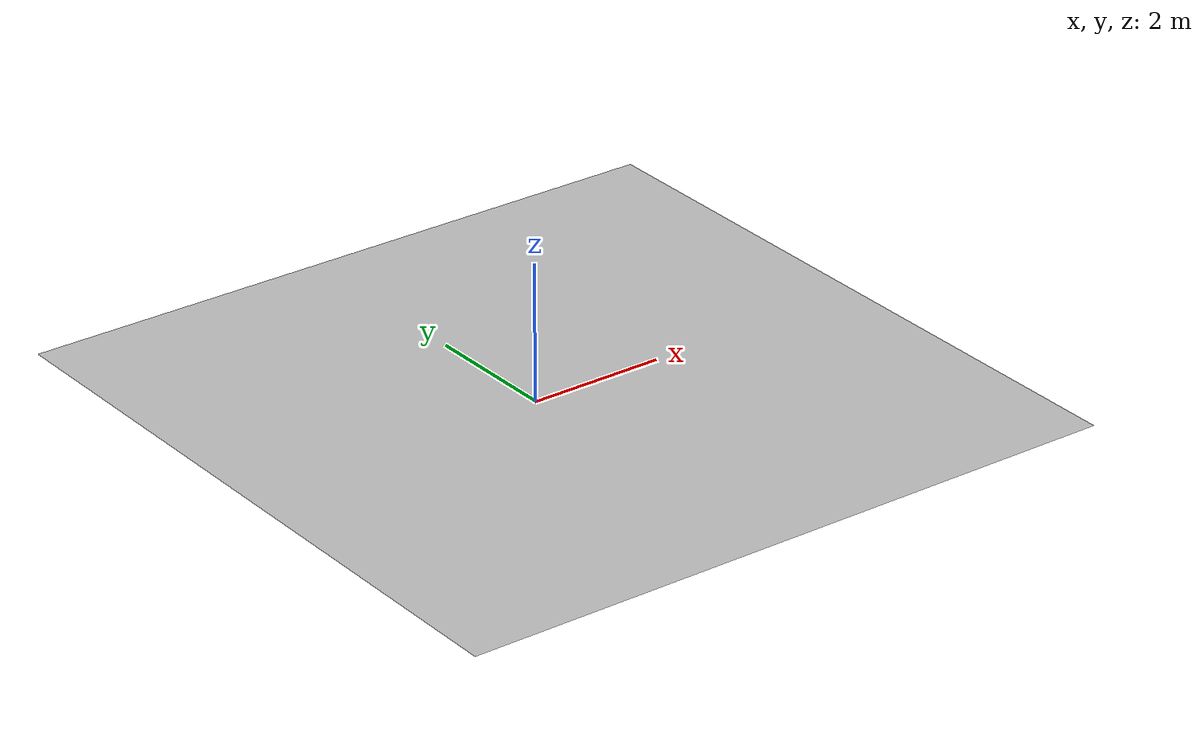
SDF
<?xml version="1.0"?>
<sdf version="1.4">
  <model name="road">
    <static>true</static>
    <pose>0 0 0.0 0 0 0</pose>
    <link name="link">
      <visual name="visual">
        <pose>0 0 0.005 0 0 0</pose>
        <geometry>
          <mesh>
            <uri>model://road/road.dae</uri>
          </mesh>
        </geometry>

      </visual>

    </link>
  </model>
</sdf>
